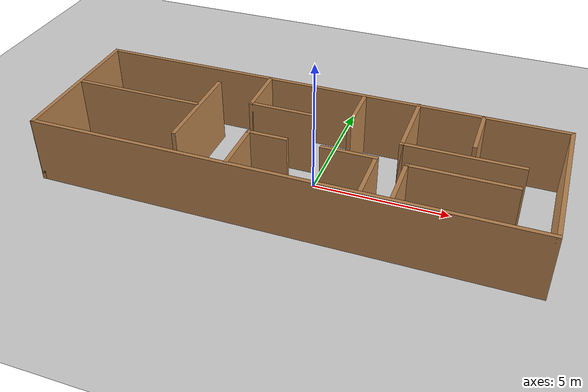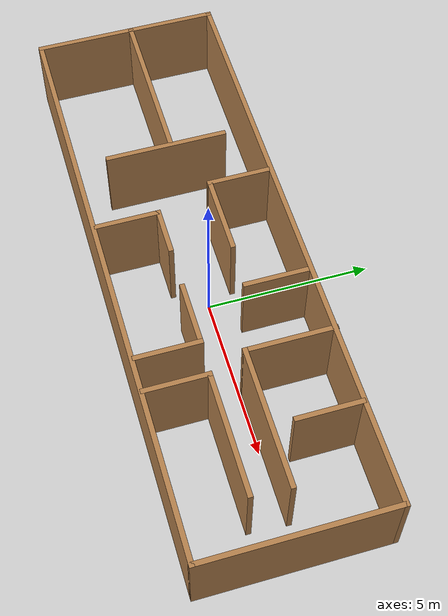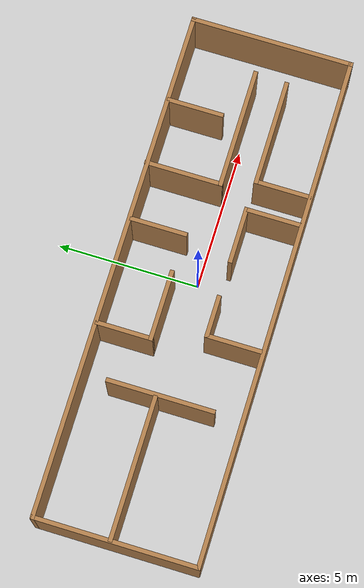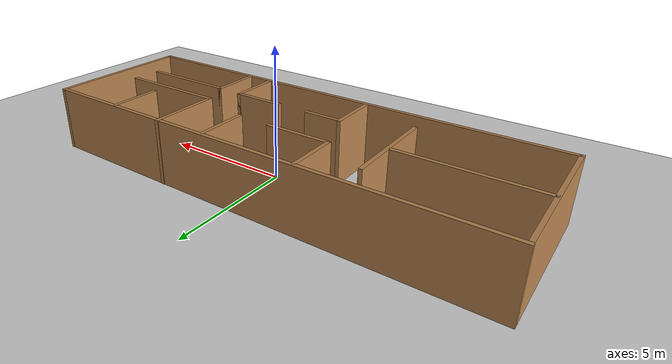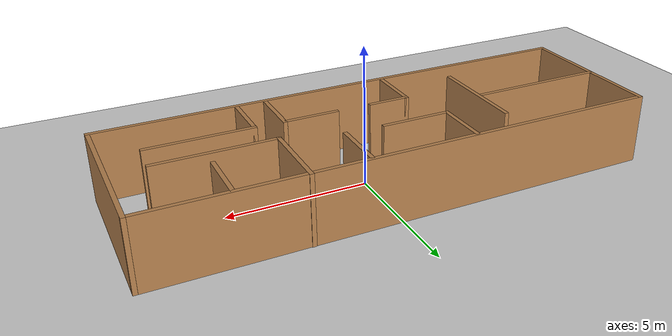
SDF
<sdf version="1.7">
 <world name="default">
  <light name="sun" type="directional">
   <pose>0 0 10 0 -0 0</pose>
   <diffuse>0.8 0.8 0.8 1</diffuse>
   <specular>0.2 0.2 0.2 1</specular>
   <attenuation>
    <range>1000</range>
    <constant>0.9</constant>
    <linear>0.01</linear>
    <quadratic>0.001</quadratic>
   </attenuation>
   <direction>-0.5 0.1 -0.9</direction>
   <spot><inner_angle>0</inner_angle><outer_angle>0</outer_angle><falloff>0</falloff></spot>
  </light>
  <model name="ground_plane">
   <static>1</static>
   <link name="link">
    <collision name="collision">
     <geometry><plane><normal>0 0 1</normal><size>100 100</size></plane></geometry>
     <surface><friction><ode><mu>100</mu><mu2>50</mu2></ode></friction></surface>
    </collision>
    <visual name="visual">
     <cast_shadows>0</cast_shadows>
     <geometry><plane><normal>0 0 1</normal><size>100 100</size></plane></geometry>
     <material>
      <script><uri>file://media/materials/scripts/gazebo.material</uri><name>Gazebo/Grey</name></script>
     </material>
    </visual>
   </link>
  </model>
  <gravity>0 0 -9.8</gravity>
  <magnetic_field>6e-06 2.3e-05 -4.2e-05</magnetic_field>
  <atmosphere type="adiabatic"/>
  <physics type="ode">
   <max_step_size>0.001</max_step_size>
   <real_time_factor>1</real_time_factor>
   <real_time_update_rate>1000</real_time_update_rate>
  </physics>
  <scene><ambient>0.4 0.4 0.4 1</ambient><background>0.7 0.7 0.7 1</background><shadows>1</shadows></scene>
  <spherical_coordinates>
   <surface_model>EARTH_WGS84</surface_model>
   <latitude_deg>0</latitude_deg>
   <longitude_deg>0</longitude_deg>
   <elevation>0</elevation>
   <heading_deg>0</heading_deg>
  </spherical_coordinates>
  <model name="v1">
   <pose>-0.504422 0.315293 0 0 -0 0</pose>
   <link name="Wall_0">
    <collision name="Wall_0_Collision">
     <geometry><box><size>5.75 0.15 2.5</size></box></geometry>
     <pose>0 0 1.25 0 -0 0</pose>
    </collision>
    <visual name="Wall_0_Visual">
     <pose>0 0 1.25 0 -0 0</pose>
     <geometry><box><size>5.75 0.15 2.5</size></box></geometry>
     <material>
      <script><uri>file://media/materials/scripts/gazebo.material</uri><name>Gazebo/Wood</name></script>
      <ambient>1 1 1 1</ambient>
     </material>
     <meta><layer>0</layer></meta>
    </visual>
    <pose>-8.925 -0.3975 0 0 -0 -1.5708</pose>
   </link>
   <link name="Wall_1">
    <collision name="Wall_1_Collision">
     <geometry><box><size>18 0.15 2.5</size></box></geometry>
     <pose>0 0 1.25 0 -0 0</pose>
    </collision>
    <visual name="Wall_1_Visual">
     <pose>0 0 1.25 0 -0 0</pose>
     <geometry><box><size>18 0.15 2.5</size></box></geometry>
     <material>
      <script><uri>file://media/materials/scripts/gazebo.material</uri><name>Gazebo/Wood</name></script>
      <ambient>1 1 1 1</ambient>
     </material>
     <meta><layer>0</layer></meta>
    </visual>
    <pose>0 -3.1975 0 0 -0 0</pose>
   </link>
   <link name="Wall_10">
    <collision name="Wall_10_Collision">
     <geometry><box><size>4.25 0.15 2.5</size></box></geometry>
     <pose>0 0 1.25 0 -0 0</pose>
    </collision>
    <visual name="Wall_10_Visual">
     <pose>0 0 1.25 0 -0 0</pose>
     <geometry><box><size>4.25 0.15 2.5</size></box></geometry>
     <material>
      <script><uri>file://media/materials/scripts/gazebo.material</uri><name>Gazebo/Wood</name></script>
      <ambient>1 1 1 1</ambient>
     </material>
     <meta><layer>0</layer></meta>
    </visual>
    <pose>5.615 -0.1775 0 0 -0 0</pose>
   </link>
   <link name="Wall_12">
    <collision name="Wall_12_Collision">
     <geometry><box><size>2 0.15 2.5</size></box></geometry>
     <pose>0 0 1.25 0 -0 0</pose>
    </collision>
    <visual name="Wall_12_Visual">
     <pose>0 0 1.25 0 -0 0</pose>
     <geometry><box><size>2 0.15 2.5</size></box></geometry>
     <material>
      <script><uri>file://media/materials/scripts/gazebo.material</uri><name>Gazebo/Wood</name></script>
      <ambient>1 1 1 1</ambient>
     </material>
     <meta><layer>0</layer></meta>
    </visual>
    <pose>5.905 1.4275 0 0 -0 -1.5708</pose>
   </link>
   <link name="Wall_14">
    <collision name="Wall_14_Collision">
     <geometry><box><size>2 0.15 2.5</size></box></geometry>
     <pose>0 0 1.25 0 -0 0</pose>
    </collision>
    <visual name="Wall_14_Visual">
     <pose>0 0 1.25 0 -0 0</pose>
     <geometry><box><size>2 0.15 2.5</size></box></geometry>
     <material>
      <script><uri>file://media/materials/scripts/gazebo.material</uri><name>Gazebo/Wood</name></script>
      <ambient>1 1 1 1</ambient>
     </material>
     <meta><layer>0</layer></meta>
    </visual>
    <pose>3.995 -2.2225 0 0 -0 1.5708</pose>
   </link>
   <link name="Wall_15">
    <collision name="Wall_15_Collision">
     <geometry><box><size>3.75 0.15 2.5</size></box></geometry>
     <pose>0 0 1.25 0 -0 0</pose>
    </collision>
    <visual name="Wall_15_Visual">
     <pose>0 0 1.25 0 -0 0</pose>
     <geometry><box><size>3.75 0.15 2.5</size></box></geometry>
     <material>
      <script><uri>file://media/materials/scripts/gazebo.material</uri><name>Gazebo/Wood</name></script>
      <ambient>1 1 1 1</ambient>
     </material>
     <meta><layer>0</layer></meta>
    </visual>
    <pose>5.795 -1.2975 0 0 -0 0</pose>
   </link>
   <link name="Wall_17">
    <collision name="Wall_17_Collision">
     <geometry><box><size>2 0.15 2.5</size></box></geometry>
     <pose>0 0 1.25 0 -0 0</pose>
    </collision>
    <visual name="Wall_17_Visual">
     <pose>0 0 1.25 0 -0 0</pose>
     <geometry><box><size>2 0.15 2.5</size></box></geometry>
     <material>
      <script><uri>file://media/materials/scripts/gazebo.material</uri><name>Gazebo/Wood</name></script>
      <ambient>1 1 1 1</ambient>
     </material>
     <meta><layer>0</layer></meta>
    </visual>
    <pose>-1.555 -2.1725 0 0 -0 1.5708</pose>
   </link>
   <link name="Wall_18">
    <collision name="Wall_18_Collision">
     <geometry><box><size>1.5 0.15 2.5</size></box></geometry>
     <pose>0 0 1.25 0 -0 0</pose>
    </collision>
    <visual name="Wall_18_Visual">
     <pose>0 0 1.25 0 -0 0</pose>
     <geometry><box><size>1.5 0.15 2.5</size></box></geometry>
     <material>
      <script><uri>file://media/materials/scripts/gazebo.material</uri><name>Gazebo/Wood</name></script>
      <ambient>1 1 1 1</ambient>
     </material>
     <meta><layer>0</layer></meta>
    </visual>
    <pose>-0.88 -1.2475 0 0 -0 0</pose>
   </link>
   <link name="Wall_2">
    <collision name="Wall_2_Collision">
     <geometry><box><size>5.75 0.15 2.5</size></box></geometry>
     <pose>0 0 1.25 0 -0 0</pose>
    </collision>
    <visual name="Wall_2_Visual">
     <pose>0 0 1.25 0 -0 0</pose>
     <geometry><box><size>5.75 0.15 2.5</size></box></geometry>
     <material>
      <script><uri>file://media/materials/scripts/gazebo.material</uri><name>Gazebo/Wood</name></script>
      <ambient>1 1 1 1</ambient>
     </material>
     <meta><layer>0</layer></meta>
    </visual>
    <pose>8.925 -0.3975 0 0 -0 1.5708</pose>
   </link>
   <link name="Wall_20">
    <collision name="Wall_20_Collision">
     <geometry><box><size>2 0.15 2.5</size></box></geometry>
     <pose>0 0 1.25 0 -0 0</pose>
    </collision>
    <visual name="Wall_20_Visual">
     <pose>0 0 1.25 0 -0 0</pose>
     <geometry><box><size>2 0.15 2.5</size></box></geometry>
     <material>
      <script><uri>file://media/materials/scripts/gazebo.material</uri><name>Gazebo/Wood</name></script>
      <ambient>1 1 1 1</ambient>
     </material>
     <meta><layer>0</layer></meta>
    </visual>
    <pose>2.04 -1.2575 0 0 -0 0</pose>
   </link>
   <link name="Wall_21">
    <collision name="Wall_21_Collision">
     <geometry><box><size>2 0.15 2.5</size></box></geometry>
     <pose>0 0 1.25 0 -0 0</pose>
    </collision>
    <visual name="Wall_21_Visual">
     <pose>0 0 1.25 0 -0 0</pose>
     <geometry><box><size>2 0.15 2.5</size></box></geometry>
     <material>
      <script><uri>file://media/materials/scripts/gazebo.material</uri><name>Gazebo/Wood</name></script>
      <ambient>1 1 1 1</ambient>
     </material>
     <meta><layer>0</layer></meta>
    </visual>
    <pose>2.965 -2.1825 0 0 -0 -1.5708</pose>
   </link>
   <link name="Wall_23">
    <collision name="Wall_23_Collision">
     <geometry><box><size>2 0.15 2.5</size></box></geometry>
     <pose>0 0 1.25 0 -0 0</pose>
    </collision>
    <visual name="Wall_23_Visual">
     <pose>0 0 1.25 0 -0 0</pose>
     <geometry><box><size>2 0.15 2.5</size></box></geometry>
     <material>
      <script><uri>file://media/materials/scripts/gazebo.material</uri><name>Gazebo/Wood</name></script>
      <ambient>1 1 1 1</ambient>
     </material>
     <meta><layer>0</layer></meta>
    </visual>
    <pose>1.545 1.3775 0 0 -0 -1.5708</pose>
   </link>
   <link name="Wall_25">
    <collision name="Wall_25_Collision">
     <geometry><box><size>2 0.15 2.5</size></box></geometry>
     <pose>0 0 1.25 0 -0 0</pose>
    </collision>
    <visual name="Wall_25_Visual">
     <pose>0 0 1.25 0 -0 0</pose>
     <geometry><box><size>2 0.15 2.5</size></box></geometry>
     <material>
      <script><uri>file://media/materials/scripts/gazebo.material</uri><name>Gazebo/Wood</name></script>
      <ambient>1 1 1 1</ambient>
     </material>
     <meta><layer>0</layer></meta>
    </visual>
    <pose>-2.185 1.4175 0 0 -0 -1.5708</pose>
   </link>
   <link name="Wall_26">
    <collision name="Wall_26_Collision">
     <geometry><box><size>2.5 0.15 2.5</size></box></geometry>
     <pose>0 0 1.25 0 -0 0</pose>
    </collision>
    <visual name="Wall_26_Visual">
     <pose>0 0 1.25 0 -0 0</pose>
     <geometry><box><size>2.5 0.15 2.5</size></box></geometry>
     <material>
      <script><uri>file://media/materials/scripts/gazebo.material</uri><name>Gazebo/Wood</name></script>
      <ambient>1 1 1 1</ambient>
     </material>
     <meta><layer>0</layer></meta>
    </visual>
    <pose>-1.01 0.4925 0 0 -0 0</pose>
   </link>
   <link name="Wall_3">
    <collision name="Wall_3_Collision">
     <geometry><box><size>18 0.15 2.5</size></box></geometry>
     <pose>0 0 1.25 0 -0 0</pose>
    </collision>
    <visual name="Wall_3_Visual">
     <pose>0 0 1.25 0 -0 0</pose>
     <geometry><box><size>18 0.15 2.5</size></box></geometry>
     <material>
      <script><uri>file://media/materials/scripts/gazebo.material</uri><name>Gazebo/Wood</name></script>
      <ambient>1 1 1 1</ambient>
     </material>
     <meta><layer>0</layer></meta>
    </visual>
    <pose>0 2.4025 0 0 -0 3.14159</pose>
   </link>
   <link name="Wall_5">
    <collision name="Wall_5_Collision">
     <geometry><box><size>5 0.15 2.5</size></box></geometry>
     <pose>0 0 1.25 0 -0 0</pose>
    </collision>
    <visual name="Wall_5_Visual">
     <pose>0 0 1.25 0 -0 0</pose>
     <geometry><box><size>5 0.15 2.5</size></box></geometry>
     <material>
      <script><uri>file://media/materials/scripts/gazebo.material</uri><name>Gazebo/Wood</name></script>
      <ambient>1 1 1 1</ambient>
     </material>
     <meta><layer>0</layer></meta>
    </visual>
    <pose>-6.46 -0.2275 0 0 -0 0</pose>
   </link>
   <link name="Wall_7">
    <collision name="Wall_7_Collision">
     <geometry><box><size>3.75 0.15 2.5</size></box></geometry>
     <pose>0 0 1.25 0 -0 0</pose>
    </collision>
    <visual name="Wall_7_Visual">
     <pose>0 0 1.25 0 -0 0</pose>
     <geometry><box><size>3.75 0.15 2.5</size></box></geometry>
     <material>
      <script><uri>file://media/materials/scripts/gazebo.material</uri><name>Gazebo/Wood</name></script>
      <ambient>1 1 1 1</ambient>
     </material>
     <meta><layer>0</layer></meta>
    </visual>
    <pose>-3.925 -0.3775 0 0 -0 -1.5708</pose>
   </link>
   <link name="Wall_9">
    <collision name="Wall_9_Collision">
     <geometry><box><size>2.75 0.15 2.5</size></box></geometry>
     <pose>0 0 1.25 0 -0 0</pose>
    </collision>
    <visual name="Wall_9_Visual">
     <pose>0 0 1.25 0 -0 0</pose>
     <geometry><box><size>2.75 0.15 2.5</size></box></geometry>
     <material>
      <script><uri>file://media/materials/scripts/gazebo.material</uri><name>Gazebo/Wood</name></script>
      <ambient>1 1 1 1</ambient>
     </material>
     <meta><layer>0</layer></meta>
    </visual>
    <pose>3.565 1.1225 0 0 -0 -1.5708</pose>
   </link>
   <static>1</static>
  </model>
 </world>
</sdf>
